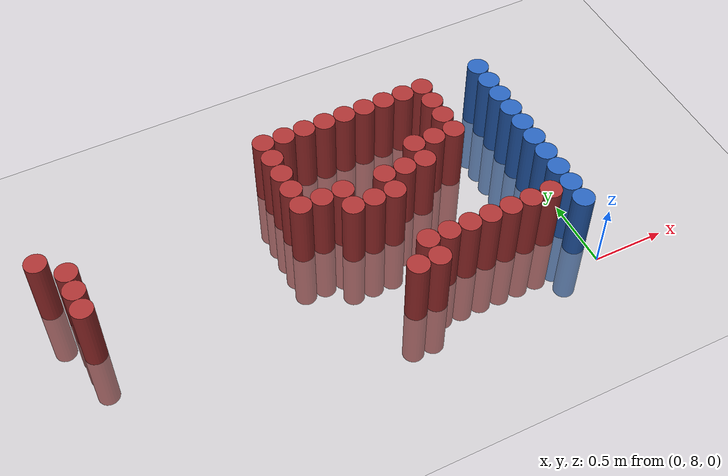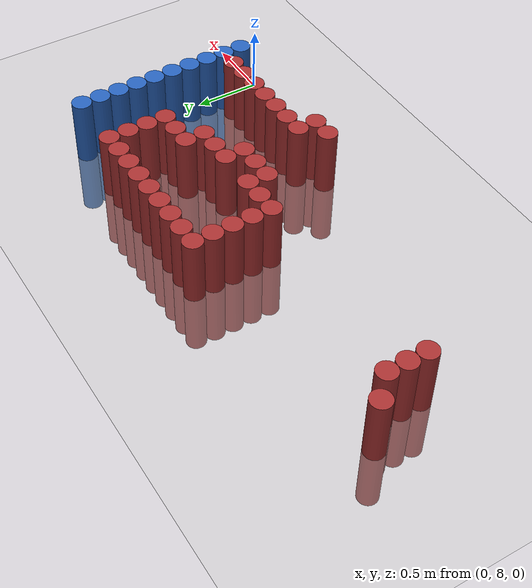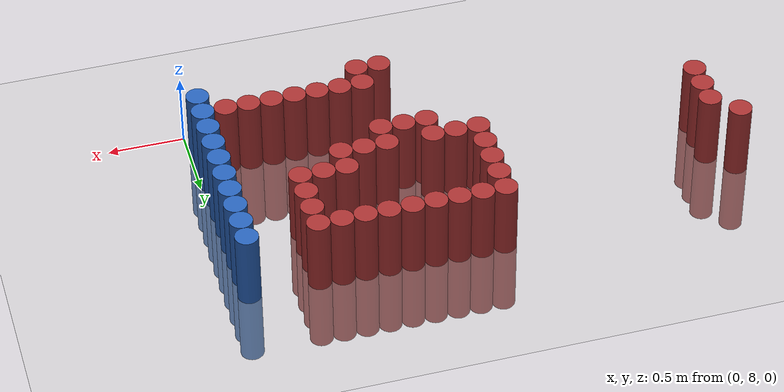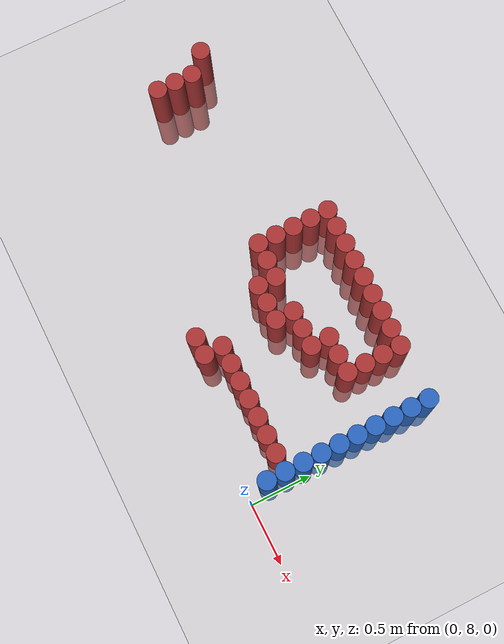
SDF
<sdf version="1.6">
 <world name="default">
  <model name="ground_plane">
   <static>1</static>
   <link name="link">
    <collision name="collision">
     <geometry><plane><normal>0 0 1</normal><size>100 100</size></plane></geometry>
     <surface><friction><ode><mu>100</mu><mu2>50</mu2></ode></friction></surface>
    </collision>
    <visual name="visual">
     <cast_shadows>0</cast_shadows>
     <geometry><plane><normal>0 0 1</normal><size>100 100</size></plane></geometry>
     <material>
      <script><uri>file://media/materials/scripts/gazebo.material</uri><name>Gazebo/Grey</name></script>
     </material>
    </visual>
   </link>
  </model>
  <model name="unit_cylinder_160">
   <static>1</static>
   <pose>-3.375000 9.225000 0.000000 0.000000 0.000000 0.000000</pose>
   <link name="link">
    <inertial>
     <mass>1</mass>
     <inertia><ixx>0.145833</ixx><ixy>0</ixy><ixz>0</ixz><iyy>0.145833</iyy><iyz>0</iyz><izz>0.125</izz></inertia>
    </inertial>
    <collision name="collision">
     <geometry><cylinder><radius>0.075000</radius><length>1</length></cylinder></geometry>
    </collision>
    <visual name="visual">
     <geometry><cylinder><radius>0.075000</radius><length>1</length></cylinder></geometry>
     <material>
      <ambient>0.648000 0.192000 0.192000 1</ambient>
      <diffuse>0.648000 0.192000 0.192000 1</diffuse>
     </material>
     <material>
      <script><name>Gazebo/Grey</name><uri>file://media/materials/scripts/gazebo.material</uri></script>
     </material>
    </visual>
   </link>
  </model>
  <model name="unit_cylinder_163">
   <static>1</static>
   <pose>-3.225000 8.775000 0.000000 0.000000 0.000000 0.000000</pose>
   <link name="link">
    <inertial>
     <mass>1</mass>
     <inertia><ixx>0.145833</ixx><ixy>0</ixy><ixz>0</ixz><iyy>0.145833</iyy><iyz>0</iyz><izz>0.125</izz></inertia>
    </inertial>
    <collision name="collision">
     <geometry><cylinder><radius>0.075000</radius><length>1</length></cylinder></geometry>
    </collision>
    <visual name="visual">
     <geometry><cylinder><radius>0.075000</radius><length>1</length></cylinder></geometry>
     <material>
      <ambient>0.648000 0.192000 0.192000 1</ambient>
      <diffuse>0.648000 0.192000 0.192000 1</diffuse>
     </material>
     <material>
      <script><name>Gazebo/Grey</name><uri>file://media/materials/scripts/gazebo.material</uri></script>
     </material>
    </visual>
   </link>
  </model>
  <model name="unit_cylinder_164">
   <static>1</static>
   <pose>-3.225000 8.925000 0.000000 0.000000 0.000000 0.000000</pose>
   <link name="link">
    <inertial>
     <mass>1</mass>
     <inertia><ixx>0.145833</ixx><ixy>0</ixy><ixz>0</ixz><iyy>0.145833</iyy><iyz>0</iyz><izz>0.125</izz></inertia>
    </inertial>
    <collision name="collision">
     <geometry><cylinder><radius>0.075000</radius><length>1</length></cylinder></geometry>
    </collision>
    <visual name="visual">
     <geometry><cylinder><radius>0.075000</radius><length>1</length></cylinder></geometry>
     <material>
      <ambient>0.648000 0.192000 0.192000 1</ambient>
      <diffuse>0.648000 0.192000 0.192000 1</diffuse>
     </material>
     <material>
      <script><name>Gazebo/Grey</name><uri>file://media/materials/scripts/gazebo.material</uri></script>
     </material>
    </visual>
   </link>
  </model>
  <model name="unit_cylinder_165">
   <static>1</static>
   <pose>-3.225000 9.075000 0.000000 0.000000 0.000000 0.000000</pose>
   <link name="link">
    <inertial>
     <mass>1</mass>
     <inertia><ixx>0.145833</ixx><ixy>0</ixy><ixz>0</ixz><iyy>0.145833</iyy><iyz>0</iyz><izz>0.125</izz></inertia>
    </inertial>
    <collision name="collision">
     <geometry><cylinder><radius>0.075000</radius><length>1</length></cylinder></geometry>
    </collision>
    <visual name="visual">
     <geometry><cylinder><radius>0.075000</radius><length>1</length></cylinder></geometry>
     <material>
      <ambient>0.648000 0.192000 0.192000 1</ambient>
      <diffuse>0.648000 0.192000 0.192000 1</diffuse>
     </material>
     <material>
      <script><name>Gazebo/Grey</name><uri>file://media/materials/scripts/gazebo.material</uri></script>
     </material>
    </visual>
   </link>
  </model>
  <model name="unit_cylinder_197">
   <static>1</static>
   <pose>-1.725000 8.925000 0.000000 0.000000 0.000000 0.000000</pose>
   <link name="link">
    <inertial>
     <mass>1</mass>
     <inertia><ixx>0.145833</ixx><ixy>0</ixy><ixz>0</ixz><iyy>0.145833</iyy><iyz>0</iyz><izz>0.125</izz></inertia>
    </inertial>
    <collision name="collision">
     <geometry><cylinder><radius>0.075000</radius><length>1</length></cylinder></geometry>
    </collision>
    <visual name="visual">
     <geometry><cylinder><radius>0.075000</radius><length>1</length></cylinder></geometry>
     <material>
      <ambient>0.648000 0.192000 0.192000 1</ambient>
      <diffuse>0.648000 0.192000 0.192000 1</diffuse>
     </material>
     <material>
      <script><name>Gazebo/Grey</name><uri>file://media/materials/scripts/gazebo.material</uri></script>
     </material>
    </visual>
   </link>
  </model>
  <model name="unit_cylinder_198">
   <static>1</static>
   <pose>-1.725000 9.075000 0.000000 0.000000 0.000000 0.000000</pose>
   <link name="link">
    <inertial>
     <mass>1</mass>
     <inertia><ixx>0.145833</ixx><ixy>0</ixy><ixz>0</ixz><iyy>0.145833</iyy><iyz>0</iyz><izz>0.125</izz></inertia>
    </inertial>
    <collision name="collision">
     <geometry><cylinder><radius>0.075000</radius><length>1</length></cylinder></geometry>
    </collision>
    <visual name="visual">
     <geometry><cylinder><radius>0.075000</radius><length>1</length></cylinder></geometry>
     <material>
      <ambient>0.648000 0.192000 0.192000 1</ambient>
      <diffuse>0.648000 0.192000 0.192000 1</diffuse>
     </material>
     <material>
      <script><name>Gazebo/Grey</name><uri>file://media/materials/scripts/gazebo.material</uri></script>
     </material>
    </visual>
   </link>
  </model>
  <model name="unit_cylinder_199">
   <static>1</static>
   <pose>-1.725000 9.225000 0.000000 0.000000 0.000000 0.000000</pose>
   <link name="link">
    <inertial>
     <mass>1</mass>
     <inertia><ixx>0.145833</ixx><ixy>0</ixy><ixz>0</ixz><iyy>0.145833</iyy><iyz>0</iyz><izz>0.125</izz></inertia>
    </inertial>
    <collision name="collision">
     <geometry><cylinder><radius>0.075000</radius><length>1</length></cylinder></geometry>
    </collision>
    <visual name="visual">
     <geometry><cylinder><radius>0.075000</radius><length>1</length></cylinder></geometry>
     <material>
      <ambient>0.648000 0.192000 0.192000 1</ambient>
      <diffuse>0.648000 0.192000 0.192000 1</diffuse>
     </material>
     <material>
      <script><name>Gazebo/Grey</name><uri>file://media/materials/scripts/gazebo.material</uri></script>
     </material>
    </visual>
   </link>
  </model>
  <model name="unit_cylinder_200">
   <static>1</static>
   <pose>-1.725000 9.375000 0.000000 0.000000 0.000000 0.000000</pose>
   <link name="link">
    <inertial>
     <mass>1</mass>
     <inertia><ixx>0.145833</ixx><ixy>0</ixy><ixz>0</ixz><iyy>0.145833</iyy><iyz>0</iyz><izz>0.125</izz></inertia>
    </inertial>
    <collision name="collision">
     <geometry><cylinder><radius>0.075000</radius><length>1</length></cylinder></geometry>
    </collision>
    <visual name="visual">
     <geometry><cylinder><radius>0.075000</radius><length>1</length></cylinder></geometry>
     <material>
      <ambient>0.648000 0.192000 0.192000 1</ambient>
      <diffuse>0.648000 0.192000 0.192000 1</diffuse>
     </material>
     <material>
      <script><name>Gazebo/Grey</name><uri>file://media/materials/scripts/gazebo.material</uri></script>
     </material>
    </visual>
   </link>
  </model>
  <model name="unit_cylinder_201">
   <static>1</static>
   <pose>-1.725000 9.525000 0.000000 0.000000 0.000000 0.000000</pose>
   <link name="link">
    <inertial>
     <mass>1</mass>
     <inertia><ixx>0.145833</ixx><ixy>0</ixy><ixz>0</ixz><iyy>0.145833</iyy><iyz>0</iyz><izz>0.125</izz></inertia>
    </inertial>
    <collision name="collision">
     <geometry><cylinder><radius>0.075000</radius><length>1</length></cylinder></geometry>
    </collision>
    <visual name="visual">
     <geometry><cylinder><radius>0.075000</radius><length>1</length></cylinder></geometry>
     <material>
      <ambient>0.648000 0.192000 0.192000 1</ambient>
      <diffuse>0.648000 0.192000 0.192000 1</diffuse>
     </material>
     <material>
      <script><name>Gazebo/Grey</name><uri>file://media/materials/scripts/gazebo.material</uri></script>
     </material>
    </visual>
   </link>
  </model>
  <model name="unit_cylinder_204">
   <static>1</static>
   <pose>-1.575000 8.925000 0.000000 0.000000 0.000000 0.000000</pose>
   <link name="link">
    <inertial>
     <mass>1</mass>
     <inertia><ixx>0.145833</ixx><ixy>0</ixy><ixz>0</ixz><iyy>0.145833</iyy><iyz>0</iyz><izz>0.125</izz></inertia>
    </inertial>
    <collision name="collision">
     <geometry><cylinder><radius>0.075000</radius><length>1</length></cylinder></geometry>
    </collision>
    <visual name="visual">
     <geometry><cylinder><radius>0.075000</radius><length>1</length></cylinder></geometry>
     <material>
      <ambient>0.648000 0.192000 0.192000 1</ambient>
      <diffuse>0.648000 0.192000 0.192000 1</diffuse>
     </material>
     <material>
      <script><name>Gazebo/Grey</name><uri>file://media/materials/scripts/gazebo.material</uri></script>
     </material>
    </visual>
   </link>
  </model>
  <model name="unit_cylinder_205">
   <static>1</static>
   <pose>-1.575000 9.525000 0.000000 0.000000 0.000000 0.000000</pose>
   <link name="link">
    <inertial>
     <mass>1</mass>
     <inertia><ixx>0.145833</ixx><ixy>0</ixy><ixz>0</ixz><iyy>0.145833</iyy><iyz>0</iyz><izz>0.125</izz></inertia>
    </inertial>
    <collision name="collision">
     <geometry><cylinder><radius>0.075000</radius><length>1</length></cylinder></geometry>
    </collision>
    <visual name="visual">
     <geometry><cylinder><radius>0.075000</radius><length>1</length></cylinder></geometry>
     <material>
      <ambient>0.648000 0.192000 0.192000 1</ambient>
      <diffuse>0.648000 0.192000 0.192000 1</diffuse>
     </material>
     <material>
      <script><name>Gazebo/Grey</name><uri>file://media/materials/scripts/gazebo.material</uri></script>
     </material>
    </visual>
   </link>
  </model>
  <model name="unit_cylinder_208">
   <static>1</static>
   <pose>-1.425000 8.775000 0.000000 0.000000 0.000000 0.000000</pose>
   <link name="link">
    <inertial>
     <mass>1</mass>
     <inertia><ixx>0.145833</ixx><ixy>0</ixy><ixz>0</ixz><iyy>0.145833</iyy><iyz>0</iyz><izz>0.125</izz></inertia>
    </inertial>
    <collision name="collision">
     <geometry><cylinder><radius>0.075000</radius><length>1</length></cylinder></geometry>
    </collision>
    <visual name="visual">
     <geometry><cylinder><radius>0.075000</radius><length>1</length></cylinder></geometry>
     <material>
      <ambient>0.648000 0.192000 0.192000 1</ambient>
      <diffuse>0.648000 0.192000 0.192000 1</diffuse>
     </material>
     <material>
      <script><name>Gazebo/Grey</name><uri>file://media/materials/scripts/gazebo.material</uri></script>
     </material>
    </visual>
   </link>
  </model>
  <model name="unit_cylinder_209">
   <static>1</static>
   <pose>-1.425000 8.925000 0.000000 0.000000 0.000000 0.000000</pose>
   <link name="link">
    <inertial>
     <mass>1</mass>
     <inertia><ixx>0.145833</ixx><ixy>0</ixy><ixz>0</ixz><iyy>0.145833</iyy><iyz>0</iyz><izz>0.125</izz></inertia>
    </inertial>
    <collision name="collision">
     <geometry><cylinder><radius>0.075000</radius><length>1</length></cylinder></geometry>
    </collision>
    <visual name="visual">
     <geometry><cylinder><radius>0.075000</radius><length>1</length></cylinder></geometry>
     <material>
      <ambient>0.648000 0.192000 0.192000 1</ambient>
      <diffuse>0.648000 0.192000 0.192000 1</diffuse>
     </material>
     <material>
      <script><name>Gazebo/Grey</name><uri>file://media/materials/scripts/gazebo.material</uri></script>
     </material>
    </visual>
   </link>
  </model>
  <model name="unit_cylinder_210">
   <static>1</static>
   <pose>-1.425000 9.525000 0.000000 0.000000 0.000000 0.000000</pose>
   <link name="link">
    <inertial>
     <mass>1</mass>
     <inertia><ixx>0.145833</ixx><ixy>0</ixy><ixz>0</ixz><iyy>0.145833</iyy><iyz>0</iyz><izz>0.125</izz></inertia>
    </inertial>
    <collision name="collision">
     <geometry><cylinder><radius>0.075000</radius><length>1</length></cylinder></geometry>
    </collision>
    <visual name="visual">
     <geometry><cylinder><radius>0.075000</radius><length>1</length></cylinder></geometry>
     <material>
      <ambient>0.648000 0.192000 0.192000 1</ambient>
      <diffuse>0.648000 0.192000 0.192000 1</diffuse>
     </material>
     <material>
      <script><name>Gazebo/Grey</name><uri>file://media/materials/scripts/gazebo.material</uri></script>
     </material>
    </visual>
   </link>
  </model>
  <model name="unit_cylinder_212">
   <static>1</static>
   <pose>-1.275000 8.175000 0.000000 0.000000 0.000000 0.000000</pose>
   <link name="link">
    <inertial>
     <mass>1</mass>
     <inertia><ixx>0.145833</ixx><ixy>0</ixy><ixz>0</ixz><iyy>0.145833</iyy><iyz>0</iyz><izz>0.125</izz></inertia>
    </inertial>
    <collision name="collision">
     <geometry><cylinder><radius>0.075000</radius><length>1</length></cylinder></geometry>
    </collision>
    <visual name="visual">
     <geometry><cylinder><radius>0.075000</radius><length>1</length></cylinder></geometry>
     <material>
      <ambient>0.648000 0.192000 0.192000 1</ambient>
      <diffuse>0.648000 0.192000 0.192000 1</diffuse>
     </material>
     <material>
      <script><name>Gazebo/Grey</name><uri>file://media/materials/scripts/gazebo.material</uri></script>
     </material>
    </visual>
   </link>
  </model>
  <model name="unit_cylinder_213">
   <static>1</static>
   <pose>-1.275000 8.775000 0.000000 0.000000 0.000000 0.000000</pose>
   <link name="link">
    <inertial>
     <mass>1</mass>
     <inertia><ixx>0.145833</ixx><ixy>0</ixy><ixz>0</ixz><iyy>0.145833</iyy><iyz>0</iyz><izz>0.125</izz></inertia>
    </inertial>
    <collision name="collision">
     <geometry><cylinder><radius>0.075000</radius><length>1</length></cylinder></geometry>
    </collision>
    <visual name="visual">
     <geometry><cylinder><radius>0.075000</radius><length>1</length></cylinder></geometry>
     <material>
      <ambient>0.648000 0.192000 0.192000 1</ambient>
      <diffuse>0.648000 0.192000 0.192000 1</diffuse>
     </material>
     <material>
      <script><name>Gazebo/Grey</name><uri>file://media/materials/scripts/gazebo.material</uri></script>
     </material>
    </visual>
   </link>
  </model>
  <model name="unit_cylinder_214">
   <static>1</static>
   <pose>-1.275000 9.525000 0.000000 0.000000 0.000000 0.000000</pose>
   <link name="link">
    <inertial>
     <mass>1</mass>
     <inertia><ixx>0.145833</ixx><ixy>0</ixy><ixz>0</ixz><iyy>0.145833</iyy><iyz>0</iyz><izz>0.125</izz></inertia>
    </inertial>
    <collision name="collision">
     <geometry><cylinder><radius>0.075000</radius><length>1</length></cylinder></geometry>
    </collision>
    <visual name="visual">
     <geometry><cylinder><radius>0.075000</radius><length>1</length></cylinder></geometry>
     <material>
      <ambient>0.648000 0.192000 0.192000 1</ambient>
      <diffuse>0.648000 0.192000 0.192000 1</diffuse>
     </material>
     <material>
      <script><name>Gazebo/Grey</name><uri>file://media/materials/scripts/gazebo.material</uri></script>
     </material>
    </visual>
   </link>
  </model>
  <model name="unit_cylinder_216">
   <static>1</static>
   <pose>-1.125000 8.175000 0.000000 0.000000 0.000000 0.000000</pose>
   <link name="link">
    <inertial>
     <mass>1</mass>
     <inertia><ixx>0.145833</ixx><ixy>0</ixy><ixz>0</ixz><iyy>0.145833</iyy><iyz>0</iyz><izz>0.125</izz></inertia>
    </inertial>
    <collision name="collision">
     <geometry><cylinder><radius>0.075000</radius><length>1</length></cylinder></geometry>
    </collision>
    <visual name="visual">
     <geometry><cylinder><radius>0.075000</radius><length>1</length></cylinder></geometry>
     <material>
      <ambient>0.648000 0.192000 0.192000 1</ambient>
      <diffuse>0.648000 0.192000 0.192000 1</diffuse>
     </material>
     <material>
      <script><name>Gazebo/Grey</name><uri>file://media/materials/scripts/gazebo.material</uri></script>
     </material>
    </visual>
   </link>
  </model>
  <model name="unit_cylinder_217">
   <static>1</static>
   <pose>-1.125000 8.325000 0.000000 0.000000 0.000000 0.000000</pose>
   <link name="link">
    <inertial>
     <mass>1</mass>
     <inertia><ixx>0.145833</ixx><ixy>0</ixy><ixz>0</ixz><iyy>0.145833</iyy><iyz>0</iyz><izz>0.125</izz></inertia>
    </inertial>
    <collision name="collision">
     <geometry><cylinder><radius>0.075000</radius><length>1</length></cylinder></geometry>
    </collision>
    <visual name="visual">
     <geometry><cylinder><radius>0.075000</radius><length>1</length></cylinder></geometry>
     <material>
      <ambient>0.648000 0.192000 0.192000 1</ambient>
      <diffuse>0.648000 0.192000 0.192000 1</diffuse>
     </material>
     <material>
      <script><name>Gazebo/Grey</name><uri>file://media/materials/scripts/gazebo.material</uri></script>
     </material>
    </visual>
   </link>
  </model>
  <model name="unit_cylinder_218">
   <static>1</static>
   <pose>-1.125000 8.775000 0.000000 0.000000 0.000000 0.000000</pose>
   <link name="link">
    <inertial>
     <mass>1</mass>
     <inertia><ixx>0.145833</ixx><ixy>0</ixy><ixz>0</ixz><iyy>0.145833</iyy><iyz>0</iyz><izz>0.125</izz></inertia>
    </inertial>
    <collision name="collision">
     <geometry><cylinder><radius>0.075000</radius><length>1</length></cylinder></geometry>
    </collision>
    <visual name="visual">
     <geometry><cylinder><radius>0.075000</radius><length>1</length></cylinder></geometry>
     <material>
      <ambient>0.648000 0.192000 0.192000 1</ambient>
      <diffuse>0.648000 0.192000 0.192000 1</diffuse>
     </material>
     <material>
      <script><name>Gazebo/Grey</name><uri>file://media/materials/scripts/gazebo.material</uri></script>
     </material>
    </visual>
   </link>
  </model>
  <model name="unit_cylinder_219">
   <static>1</static>
   <pose>-1.125000 8.925000 0.000000 0.000000 0.000000 0.000000</pose>
   <link name="link">
    <inertial>
     <mass>1</mass>
     <inertia><ixx>0.145833</ixx><ixy>0</ixy><ixz>0</ixz><iyy>0.145833</iyy><iyz>0</iyz><izz>0.125</izz></inertia>
    </inertial>
    <collision name="collision">
     <geometry><cylinder><radius>0.075000</radius><length>1</length></cylinder></geometry>
    </collision>
    <visual name="visual">
     <geometry><cylinder><radius>0.075000</radius><length>1</length></cylinder></geometry>
     <material>
      <ambient>0.648000 0.192000 0.192000 1</ambient>
      <diffuse>0.648000 0.192000 0.192000 1</diffuse>
     </material>
     <material>
      <script><name>Gazebo/Grey</name><uri>file://media/materials/scripts/gazebo.material</uri></script>
     </material>
    </visual>
   </link>
  </model>
  <model name="unit_cylinder_220">
   <static>1</static>
   <pose>-1.125000 9.525000 0.000000 0.000000 0.000000 0.000000</pose>
   <link name="link">
    <inertial>
     <mass>1</mass>
     <inertia><ixx>0.145833</ixx><ixy>0</ixy><ixz>0</ixz><iyy>0.145833</iyy><iyz>0</iyz><izz>0.125</izz></inertia>
    </inertial>
    <collision name="collision">
     <geometry><cylinder><radius>0.075000</radius><length>1</length></cylinder></geometry>
    </collision>
    <visual name="visual">
     <geometry><cylinder><radius>0.075000</radius><length>1</length></cylinder></geometry>
     <material>
      <ambient>0.648000 0.192000 0.192000 1</ambient>
      <diffuse>0.648000 0.192000 0.192000 1</diffuse>
     </material>
     <material>
      <script><name>Gazebo/Grey</name><uri>file://media/materials/scripts/gazebo.material</uri></script>
     </material>
    </visual>
   </link>
  </model>
  <model name="unit_cylinder_228">
   <static>1</static>
   <pose>-0.975000 8.325000 0.000000 0.000000 0.000000 0.000000</pose>
   <link name="link">
    <inertial>
     <mass>1</mass>
     <inertia><ixx>0.145833</ixx><ixy>0</ixy><ixz>0</ixz><iyy>0.145833</iyy><iyz>0</iyz><izz>0.125</izz></inertia>
    </inertial>
    <collision name="collision">
     <geometry><cylinder><radius>0.075000</radius><length>1</length></cylinder></geometry>
    </collision>
    <visual name="visual">
     <geometry><cylinder><radius>0.075000</radius><length>1</length></cylinder></geometry>
     <material>
      <ambient>0.648000 0.192000 0.192000 1</ambient>
      <diffuse>0.648000 0.192000 0.192000 1</diffuse>
     </material>
     <material>
      <script><name>Gazebo/Grey</name><uri>file://media/materials/scripts/gazebo.material</uri></script>
     </material>
    </visual>
   </link>
  </model>
  <model name="unit_cylinder_229">
   <static>1</static>
   <pose>-0.975000 8.925000 0.000000 0.000000 0.000000 0.000000</pose>
   <link name="link">
    <inertial>
     <mass>1</mass>
     <inertia><ixx>0.145833</ixx><ixy>0</ixy><ixz>0</ixz><iyy>0.145833</iyy><iyz>0</iyz><izz>0.125</izz></inertia>
    </inertial>
    <collision name="collision">
     <geometry><cylinder><radius>0.075000</radius><length>1</length></cylinder></geometry>
    </collision>
    <visual name="visual">
     <geometry><cylinder><radius>0.075000</radius><length>1</length></cylinder></geometry>
     <material>
      <ambient>0.648000 0.192000 0.192000 1</ambient>
      <diffuse>0.648000 0.192000 0.192000 1</diffuse>
     </material>
     <material>
      <script><name>Gazebo/Grey</name><uri>file://media/materials/scripts/gazebo.material</uri></script>
     </material>
    </visual>
   </link>
  </model>
  <model name="unit_cylinder_230">
   <static>1</static>
   <pose>-0.975000 9.525000 0.000000 0.000000 0.000000 0.000000</pose>
   <link name="link">
    <inertial>
     <mass>1</mass>
     <inertia><ixx>0.145833</ixx><ixy>0</ixy><ixz>0</ixz><iyy>0.145833</iyy><iyz>0</iyz><izz>0.125</izz></inertia>
    </inertial>
    <collision name="collision">
     <geometry><cylinder><radius>0.075000</radius><length>1</length></cylinder></geometry>
    </collision>
    <visual name="visual">
     <geometry><cylinder><radius>0.075000</radius><length>1</length></cylinder></geometry>
     <material>
      <ambient>0.648000 0.192000 0.192000 1</ambient>
      <diffuse>0.648000 0.192000 0.192000 1</diffuse>
     </material>
     <material>
      <script><name>Gazebo/Grey</name><uri>file://media/materials/scripts/gazebo.material</uri></script>
     </material>
    </visual>
   </link>
  </model>
  <model name="unit_cylinder_235">
   <static>1</static>
   <pose>-0.825000 8.325000 0.000000 0.000000 0.000000 0.000000</pose>
   <link name="link">
    <inertial>
     <mass>1</mass>
     <inertia><ixx>0.145833</ixx><ixy>0</ixy><ixz>0</ixz><iyy>0.145833</iyy><iyz>0</iyz><izz>0.125</izz></inertia>
    </inertial>
    <collision name="collision">
     <geometry><cylinder><radius>0.075000</radius><length>1</length></cylinder></geometry>
    </collision>
    <visual name="visual">
     <geometry><cylinder><radius>0.075000</radius><length>1</length></cylinder></geometry>
     <material>
      <ambient>0.648000 0.192000 0.192000 1</ambient>
      <diffuse>0.648000 0.192000 0.192000 1</diffuse>
     </material>
     <material>
      <script><name>Gazebo/Grey</name><uri>file://media/materials/scripts/gazebo.material</uri></script>
     </material>
    </visual>
   </link>
  </model>
  <model name="unit_cylinder_236">
   <static>1</static>
   <pose>-0.825000 8.925000 0.000000 0.000000 0.000000 0.000000</pose>
   <link name="link">
    <inertial>
     <mass>1</mass>
     <inertia><ixx>0.145833</ixx><ixy>0</ixy><ixz>0</ixz><iyy>0.145833</iyy><iyz>0</iyz><izz>0.125</izz></inertia>
    </inertial>
    <collision name="collision">
     <geometry><cylinder><radius>0.075000</radius><length>1</length></cylinder></geometry>
    </collision>
    <visual name="visual">
     <geometry><cylinder><radius>0.075000</radius><length>1</length></cylinder></geometry>
     <material>
      <ambient>0.648000 0.192000 0.192000 1</ambient>
      <diffuse>0.648000 0.192000 0.192000 1</diffuse>
     </material>
     <material>
      <script><name>Gazebo/Grey</name><uri>file://media/materials/scripts/gazebo.material</uri></script>
     </material>
    </visual>
   </link>
  </model>
  <model name="unit_cylinder_237">
   <static>1</static>
   <pose>-0.825000 9.075000 0.000000 0.000000 0.000000 0.000000</pose>
   <link name="link">
    <inertial>
     <mass>1</mass>
     <inertia><ixx>0.145833</ixx><ixy>0</ixy><ixz>0</ixz><iyy>0.145833</iyy><iyz>0</iyz><izz>0.125</izz></inertia>
    </inertial>
    <collision name="collision">
     <geometry><cylinder><radius>0.075000</radius><length>1</length></cylinder></geometry>
    </collision>
    <visual name="visual">
     <geometry><cylinder><radius>0.075000</radius><length>1</length></cylinder></geometry>
     <material>
      <ambient>0.648000 0.192000 0.192000 1</ambient>
      <diffuse>0.648000 0.192000 0.192000 1</diffuse>
     </material>
     <material>
      <script><name>Gazebo/Grey</name><uri>file://media/materials/scripts/gazebo.material</uri></script>
     </material>
    </visual>
   </link>
  </model>
  <model name="unit_cylinder_238">
   <static>1</static>
   <pose>-0.825000 9.525000 0.000000 0.000000 0.000000 0.000000</pose>
   <link name="link">
    <inertial>
     <mass>1</mass>
     <inertia><ixx>0.145833</ixx><ixy>0</ixy><ixz>0</ixz><iyy>0.145833</iyy><iyz>0</iyz><izz>0.125</izz></inertia>
    </inertial>
    <collision name="collision">
     <geometry><cylinder><radius>0.075000</radius><length>1</length></cylinder></geometry>
    </collision>
    <visual name="visual">
     <geometry><cylinder><radius>0.075000</radius><length>1</length></cylinder></geometry>
     <material>
      <ambient>0.648000 0.192000 0.192000 1</ambient>
      <diffuse>0.648000 0.192000 0.192000 1</diffuse>
     </material>
     <material>
      <script><name>Gazebo/Grey</name><uri>file://media/materials/scripts/gazebo.material</uri></script>
     </material>
    </visual>
   </link>
  </model>
  <model name="unit_cylinder_242">
   <static>1</static>
   <pose>-0.675000 8.325000 0.000000 0.000000 0.000000 0.000000</pose>
   <link name="link">
    <inertial>
     <mass>1</mass>
     <inertia><ixx>0.145833</ixx><ixy>0</ixy><ixz>0</ixz><iyy>0.145833</iyy><iyz>0</iyz><izz>0.125</izz></inertia>
    </inertial>
    <collision name="collision">
     <geometry><cylinder><radius>0.075000</radius><length>1</length></cylinder></geometry>
    </collision>
    <visual name="visual">
     <geometry><cylinder><radius>0.075000</radius><length>1</length></cylinder></geometry>
     <material>
      <ambient>0.648000 0.192000 0.192000 1</ambient>
      <diffuse>0.648000 0.192000 0.192000 1</diffuse>
     </material>
     <material>
      <script><name>Gazebo/Grey</name><uri>file://media/materials/scripts/gazebo.material</uri></script>
     </material>
    </visual>
   </link>
  </model>
  <model name="unit_cylinder_243">
   <static>1</static>
   <pose>-0.675000 9.075000 0.000000 0.000000 0.000000 0.000000</pose>
   <link name="link">
    <inertial>
     <mass>1</mass>
     <inertia><ixx>0.145833</ixx><ixy>0</ixy><ixz>0</ixz><iyy>0.145833</iyy><iyz>0</iyz><izz>0.125</izz></inertia>
    </inertial>
    <collision name="collision">
     <geometry><cylinder><radius>0.075000</radius><length>1</length></cylinder></geometry>
    </collision>
    <visual name="visual">
     <geometry><cylinder><radius>0.075000</radius><length>1</length></cylinder></geometry>
     <material>
      <ambient>0.648000 0.192000 0.192000 1</ambient>
      <diffuse>0.648000 0.192000 0.192000 1</diffuse>
     </material>
     <material>
      <script><name>Gazebo/Grey</name><uri>file://media/materials/scripts/gazebo.material</uri></script>
     </material>
    </visual>
   </link>
  </model>
  <model name="unit_cylinder_244">
   <static>1</static>
   <pose>-0.675000 9.525000 0.000000 0.000000 0.000000 0.000000</pose>
   <link name="link">
    <inertial>
     <mass>1</mass>
     <inertia><ixx>0.145833</ixx><ixy>0</ixy><ixz>0</ixz><iyy>0.145833</iyy><iyz>0</iyz><izz>0.125</izz></inertia>
    </inertial>
    <collision name="collision">
     <geometry><cylinder><radius>0.075000</radius><length>1</length></cylinder></geometry>
    </collision>
    <visual name="visual">
     <geometry><cylinder><radius>0.075000</radius><length>1</length></cylinder></geometry>
     <material>
      <ambient>0.648000 0.192000 0.192000 1</ambient>
      <diffuse>0.648000 0.192000 0.192000 1</diffuse>
     </material>
     <material>
      <script><name>Gazebo/Grey</name><uri>file://media/materials/scripts/gazebo.material</uri></script>
     </material>
    </visual>
   </link>
  </model>
  <model name="unit_cylinder_249">
   <static>1</static>
   <pose>-0.525000 8.325000 0.000000 0.000000 0.000000 0.000000</pose>
   <link name="link">
    <inertial>
     <mass>1</mass>
     <inertia><ixx>0.145833</ixx><ixy>0</ixy><ixz>0</ixz><iyy>0.145833</iyy><iyz>0</iyz><izz>0.125</izz></inertia>
    </inertial>
    <collision name="collision">
     <geometry><cylinder><radius>0.075000</radius><length>1</length></cylinder></geometry>
    </collision>
    <visual name="visual">
     <geometry><cylinder><radius>0.075000</radius><length>1</length></cylinder></geometry>
     <material>
      <ambient>0.648000 0.192000 0.192000 1</ambient>
      <diffuse>0.648000 0.192000 0.192000 1</diffuse>
     </material>
     <material>
      <script><name>Gazebo/Grey</name><uri>file://media/materials/scripts/gazebo.material</uri></script>
     </material>
    </visual>
   </link>
  </model>
  <model name="unit_cylinder_250">
   <static>1</static>
   <pose>-0.525000 9.075000 0.000000 0.000000 0.000000 0.000000</pose>
   <link name="link">
    <inertial>
     <mass>1</mass>
     <inertia><ixx>0.145833</ixx><ixy>0</ixy><ixz>0</ixz><iyy>0.145833</iyy><iyz>0</iyz><izz>0.125</izz></inertia>
    </inertial>
    <collision name="collision">
     <geometry><cylinder><radius>0.075000</radius><length>1</length></cylinder></geometry>
    </collision>
    <visual name="visual">
     <geometry><cylinder><radius>0.075000</radius><length>1</length></cylinder></geometry>
     <material>
      <ambient>0.648000 0.192000 0.192000 1</ambient>
      <diffuse>0.648000 0.192000 0.192000 1</diffuse>
     </material>
     <material>
      <script><name>Gazebo/Grey</name><uri>file://media/materials/scripts/gazebo.material</uri></script>
     </material>
    </visual>
   </link>
  </model>
  <model name="unit_cylinder_251">
   <static>1</static>
   <pose>-0.525000 9.225000 0.000000 0.000000 0.000000 0.000000</pose>
   <link name="link">
    <inertial>
     <mass>1</mass>
     <inertia><ixx>0.145833</ixx><ixy>0</ixy><ixz>0</ixz><iyy>0.145833</iyy><iyz>0</iyz><izz>0.125</izz></inertia>
    </inertial>
    <collision name="collision">
     <geometry><cylinder><radius>0.075000</radius><length>1</length></cylinder></geometry>
    </collision>
    <visual name="visual">
     <geometry><cylinder><radius>0.075000</radius><length>1</length></cylinder></geometry>
     <material>
      <ambient>0.648000 0.192000 0.192000 1</ambient>
      <diffuse>0.648000 0.192000 0.192000 1</diffuse>
     </material>
     <material>
      <script><name>Gazebo/Grey</name><uri>file://media/materials/scripts/gazebo.material</uri></script>
     </material>
    </visual>
   </link>
  </model>
  <model name="unit_cylinder_252">
   <static>1</static>
   <pose>-0.525000 9.375000 0.000000 0.000000 0.000000 0.000000</pose>
   <link name="link">
    <inertial>
     <mass>1</mass>
     <inertia><ixx>0.145833</ixx><ixy>0</ixy><ixz>0</ixz><iyy>0.145833</iyy><iyz>0</iyz><izz>0.125</izz></inertia>
    </inertial>
    <collision name="collision">
     <geometry><cylinder><radius>0.075000</radius><length>1</length></cylinder></geometry>
    </collision>
    <visual name="visual">
     <geometry><cylinder><radius>0.075000</radius><length>1</length></cylinder></geometry>
     <material>
      <ambient>0.648000 0.192000 0.192000 1</ambient>
      <diffuse>0.648000 0.192000 0.192000 1</diffuse>
     </material>
     <material>
      <script><name>Gazebo/Grey</name><uri>file://media/materials/scripts/gazebo.material</uri></script>
     </material>
    </visual>
   </link>
  </model>
  <model name="unit_cylinder_253">
   <static>1</static>
   <pose>-0.525000 9.525000 0.000000 0.000000 0.000000 0.000000</pose>
   <link name="link">
    <inertial>
     <mass>1</mass>
     <inertia><ixx>0.145833</ixx><ixy>0</ixy><ixz>0</ixz><iyy>0.145833</iyy><iyz>0</iyz><izz>0.125</izz></inertia>
    </inertial>
    <collision name="collision">
     <geometry><cylinder><radius>0.075000</radius><length>1</length></cylinder></geometry>
    </collision>
    <visual name="visual">
     <geometry><cylinder><radius>0.075000</radius><length>1</length></cylinder></geometry>
     <material>
      <ambient>0.648000 0.192000 0.192000 1</ambient>
      <diffuse>0.648000 0.192000 0.192000 1</diffuse>
     </material>
     <material>
      <script><name>Gazebo/Grey</name><uri>file://media/materials/scripts/gazebo.material</uri></script>
     </material>
    </visual>
   </link>
  </model>
  <model name="unit_cylinder_257">
   <static>1</static>
   <pose>-0.375000 8.325000 0.000000 0.000000 0.000000 0.000000</pose>
   <link name="link">
    <inertial>
     <mass>1</mass>
     <inertia><ixx>0.145833</ixx><ixy>0</ixy><ixz>0</ixz><iyy>0.145833</iyy><iyz>0</iyz><izz>0.125</izz></inertia>
    </inertial>
    <collision name="collision">
     <geometry><cylinder><radius>0.075000</radius><length>1</length></cylinder></geometry>
    </collision>
    <visual name="visual">
     <geometry><cylinder><radius>0.075000</radius><length>1</length></cylinder></geometry>
     <material>
      <ambient>0.648000 0.192000 0.192000 1</ambient>
      <diffuse>0.648000 0.192000 0.192000 1</diffuse>
     </material>
     <material>
      <script><name>Gazebo/Grey</name><uri>file://media/materials/scripts/gazebo.material</uri></script>
     </material>
    </visual>
   </link>
  </model>
  <model name="unit_cylinder_261">
   <static>1</static>
   <pose>-0.225000 8.325000 0.000000 0.000000 0.000000 0.000000</pose>
   <link name="link">
    <inertial>
     <mass>1</mass>
     <inertia><ixx>0.145833</ixx><ixy>0</ixy><ixz>0</ixz><iyy>0.145833</iyy><iyz>0</iyz><izz>0.125</izz></inertia>
    </inertial>
    <collision name="collision">
     <geometry><cylinder><radius>0.075000</radius><length>1</length></cylinder></geometry>
    </collision>
    <visual name="visual">
     <geometry><cylinder><radius>0.075000</radius><length>1</length></cylinder></geometry>
     <material>
      <ambient>0.648000 0.192000 0.192000 1</ambient>
      <diffuse>0.648000 0.192000 0.192000 1</diffuse>
     </material>
     <material>
      <script><name>Gazebo/Grey</name><uri>file://media/materials/scripts/gazebo.material</uri></script>
     </material>
    </visual>
   </link>
  </model>
  <model name="unit_cylinder_282">
   <static>1</static>
   <pose>-0.075000 8.175000 0.000000 0.000000 0.000000 0.000000</pose>
   <link name="link">
    <inertial>
     <mass>1</mass>
     <inertia><ixx>0.145833</ixx><ixy>0</ixy><ixz>0</ixz><iyy>0.145833</iyy><iyz>0</iyz><izz>0.125</izz></inertia>
    </inertial>
    <collision name="collision">
     <geometry><cylinder><radius>0.075000</radius><length>1</length></cylinder></geometry>
    </collision>
    <visual name="visual">
     <geometry><cylinder><radius>0.075000</radius><length>1</length></cylinder></geometry>
     <material>
      <ambient>0.152000 0.379000 0.720000 1</ambient>
      <diffuse>0.152000 0.379000 0.720000 1</diffuse>
     </material>
     <material>
      <script><name>Gazebo/Grey</name><uri>file://media/materials/scripts/gazebo.material</uri></script>
     </material>
    </visual>
   </link>
  </model>
  <model name="unit_cylinder_283">
   <static>1</static>
   <pose>-0.075000 8.325000 0.000000 0.000000 0.000000 0.000000</pose>
   <link name="link">
    <inertial>
     <mass>1</mass>
     <inertia><ixx>0.145833</ixx><ixy>0</ixy><ixz>0</ixz><iyy>0.145833</iyy><iyz>0</iyz><izz>0.125</izz></inertia>
    </inertial>
    <collision name="collision">
     <geometry><cylinder><radius>0.075000</radius><length>1</length></cylinder></geometry>
    </collision>
    <visual name="visual">
     <geometry><cylinder><radius>0.075000</radius><length>1</length></cylinder></geometry>
     <material>
      <ambient>0.152000 0.379000 0.720000 1</ambient>
      <diffuse>0.152000 0.379000 0.720000 1</diffuse>
     </material>
     <material>
      <script><name>Gazebo/Grey</name><uri>file://media/materials/scripts/gazebo.material</uri></script>
     </material>
    </visual>
   </link>
  </model>
  <model name="unit_cylinder_284">
   <static>1</static>
   <pose>-0.075000 8.475000 0.000000 0.000000 0.000000 0.000000</pose>
   <link name="link">
    <inertial>
     <mass>1</mass>
     <inertia><ixx>0.145833</ixx><ixy>0</ixy><ixz>0</ixz><iyy>0.145833</iyy><iyz>0</iyz><izz>0.125</izz></inertia>
    </inertial>
    <collision name="collision">
     <geometry><cylinder><radius>0.075000</radius><length>1</length></cylinder></geometry>
    </collision>
    <visual name="visual">
     <geometry><cylinder><radius>0.075000</radius><length>1</length></cylinder></geometry>
     <material>
      <ambient>0.152000 0.379000 0.720000 1</ambient>
      <diffuse>0.152000 0.379000 0.720000 1</diffuse>
     </material>
     <material>
      <script><name>Gazebo/Grey</name><uri>file://media/materials/scripts/gazebo.material</uri></script>
     </material>
    </visual>
   </link>
  </model>
  <model name="unit_cylinder_285">
   <static>1</static>
   <pose>-0.075000 8.625000 0.000000 0.000000 0.000000 0.000000</pose>
   <link name="link">
    <inertial>
     <mass>1</mass>
     <inertia><ixx>0.145833</ixx><ixy>0</ixy><ixz>0</ixz><iyy>0.145833</iyy><iyz>0</iyz><izz>0.125</izz></inertia>
    </inertial>
    <collision name="collision">
     <geometry><cylinder><radius>0.075000</radius><length>1</length></cylinder></geometry>
    </collision>
    <visual name="visual">
     <geometry><cylinder><radius>0.075000</radius><length>1</length></cylinder></geometry>
     <material>
      <ambient>0.152000 0.379000 0.720000 1</ambient>
      <diffuse>0.152000 0.379000 0.720000 1</diffuse>
     </material>
     <material>
      <script><name>Gazebo/Grey</name><uri>file://media/materials/scripts/gazebo.material</uri></script>
     </material>
    </visual>
   </link>
  </model>
  <model name="unit_cylinder_286">
   <static>1</static>
   <pose>-0.075000 8.775000 0.000000 0.000000 0.000000 0.000000</pose>
   <link name="link">
    <inertial>
     <mass>1</mass>
     <inertia><ixx>0.145833</ixx><ixy>0</ixy><ixz>0</ixz><iyy>0.145833</iyy><iyz>0</iyz><izz>0.125</izz></inertia>
    </inertial>
    <collision name="collision">
     <geometry><cylinder><radius>0.075000</radius><length>1</length></cylinder></geometry>
    </collision>
    <visual name="visual">
     <geometry><cylinder><radius>0.075000</radius><length>1</length></cylinder></geometry>
     <material>
      <ambient>0.152000 0.379000 0.720000 1</ambient>
      <diffuse>0.152000 0.379000 0.720000 1</diffuse>
     </material>
     <material>
      <script><name>Gazebo/Grey</name><uri>file://media/materials/scripts/gazebo.material</uri></script>
     </material>
    </visual>
   </link>
  </model>
  <model name="unit_cylinder_287">
   <static>1</static>
   <pose>-0.075000 8.925000 0.000000 0.000000 0.000000 0.000000</pose>
   <link name="link">
    <inertial>
     <mass>1</mass>
     <inertia><ixx>0.145833</ixx><ixy>0</ixy><ixz>0</ixz><iyy>0.145833</iyy><iyz>0</iyz><izz>0.125</izz></inertia>
    </inertial>
    <collision name="collision">
     <geometry><cylinder><radius>0.075000</radius><length>1</length></cylinder></geometry>
    </collision>
    <visual name="visual">
     <geometry><cylinder><radius>0.075000</radius><length>1</length></cylinder></geometry>
     <material>
      <ambient>0.152000 0.379000 0.720000 1</ambient>
      <diffuse>0.152000 0.379000 0.720000 1</diffuse>
     </material>
     <material>
      <script><name>Gazebo/Grey</name><uri>file://media/materials/scripts/gazebo.material</uri></script>
     </material>
    </visual>
   </link>
  </model>
  <model name="unit_cylinder_288">
   <static>1</static>
   <pose>-0.075000 9.075000 0.000000 0.000000 0.000000 0.000000</pose>
   <link name="link">
    <inertial>
     <mass>1</mass>
     <inertia><ixx>0.145833</ixx><ixy>0</ixy><ixz>0</ixz><iyy>0.145833</iyy><iyz>0</iyz><izz>0.125</izz></inertia>
    </inertial>
    <collision name="collision">
     <geometry><cylinder><radius>0.075000</radius><length>1</length></cylinder></geometry>
    </collision>
    <visual name="visual">
     <geometry><cylinder><radius>0.075000</radius><length>1</length></cylinder></geometry>
     <material>
      <ambient>0.152000 0.379000 0.720000 1</ambient>
      <diffuse>0.152000 0.379000 0.720000 1</diffuse>
     </material>
     <material>
      <script><name>Gazebo/Grey</name><uri>file://media/materials/scripts/gazebo.material</uri></script>
     </material>
    </visual>
   </link>
  </model>
  <model name="unit_cylinder_289">
   <static>1</static>
   <pose>-0.075000 9.225000 0.000000 0.000000 0.000000 0.000000</pose>
   <link name="link">
    <inertial>
     <mass>1</mass>
     <inertia><ixx>0.145833</ixx><ixy>0</ixy><ixz>0</ixz><iyy>0.145833</iyy><iyz>0</iyz><izz>0.125</izz></inertia>
    </inertial>
    <collision name="collision">
     <geometry><cylinder><radius>0.075000</radius><length>1</length></cylinder></geometry>
    </collision>
    <visual name="visual">
     <geometry><cylinder><radius>0.075000</radius><length>1</length></cylinder></geometry>
     <material>
      <ambient>0.152000 0.379000 0.720000 1</ambient>
      <diffuse>0.152000 0.379000 0.720000 1</diffuse>
     </material>
     <material>
      <script><name>Gazebo/Grey</name><uri>file://media/materials/scripts/gazebo.material</uri></script>
     </material>
    </visual>
   </link>
  </model>
  <model name="unit_cylinder_290">
   <static>1</static>
   <pose>-0.075000 9.375000 0.000000 0.000000 0.000000 0.000000</pose>
   <link name="link">
    <inertial>
     <mass>1</mass>
     <inertia><ixx>0.145833</ixx><ixy>0</ixy><ixz>0</ixz><iyy>0.145833</iyy><iyz>0</iyz><izz>0.125</izz></inertia>
    </inertial>
    <collision name="collision">
     <geometry><cylinder><radius>0.075000</radius><length>1</length></cylinder></geometry>
    </collision>
    <visual name="visual">
     <geometry><cylinder><radius>0.075000</radius><length>1</length></cylinder></geometry>
     <material>
      <ambient>0.152000 0.379000 0.720000 1</ambient>
      <diffuse>0.152000 0.379000 0.720000 1</diffuse>
     </material>
     <material>
      <script><name>Gazebo/Grey</name><uri>file://media/materials/scripts/gazebo.material</uri></script>
     </material>
    </visual>
   </link>
  </model>
  <model name="unit_cylinder_291">
   <static>1</static>
   <pose>-0.075000 9.525000 0.000000 0.000000 0.000000 0.000000</pose>
   <link name="link">
    <inertial>
     <mass>1</mass>
     <inertia><ixx>0.145833</ixx><ixy>0</ixy><ixz>0</ixz><iyy>0.145833</iyy><iyz>0</iyz><izz>0.125</izz></inertia>
    </inertial>
    <collision name="collision">
     <geometry><cylinder><radius>0.075000</radius><length>1</length></cylinder></geometry>
    </collision>
    <visual name="visual">
     <geometry><cylinder><radius>0.075000</radius><length>1</length></cylinder></geometry>
     <material>
      <ambient>0.152000 0.379000 0.720000 1</ambient>
      <diffuse>0.152000 0.379000 0.720000 1</diffuse>
     </material>
     <material>
      <script><name>Gazebo/Grey</name><uri>file://media/materials/scripts/gazebo.material</uri></script>
     </material>
    </visual>
   </link>
  </model>
 </world>
</sdf>
